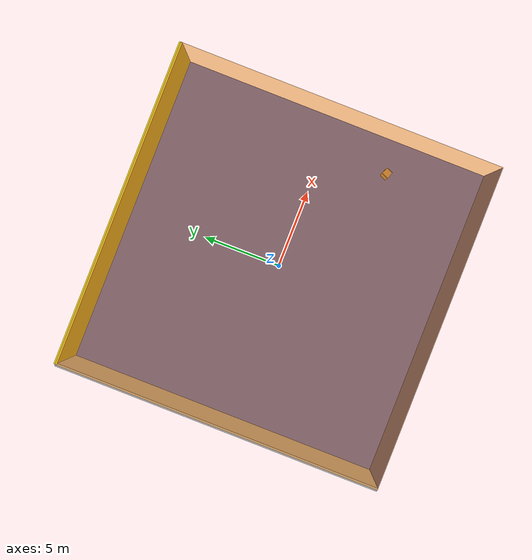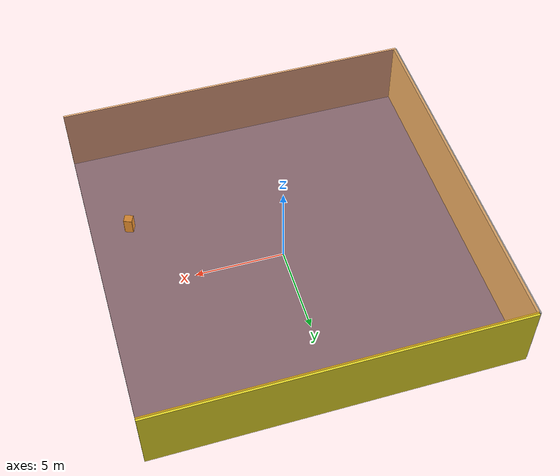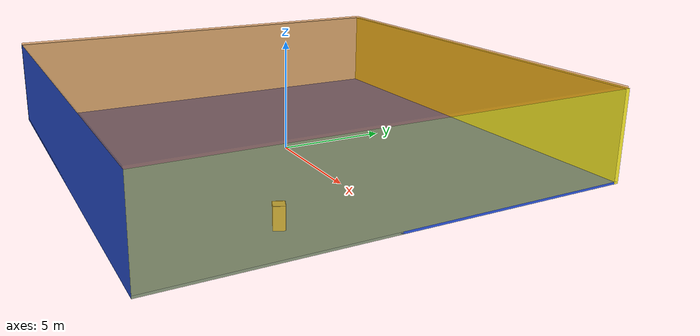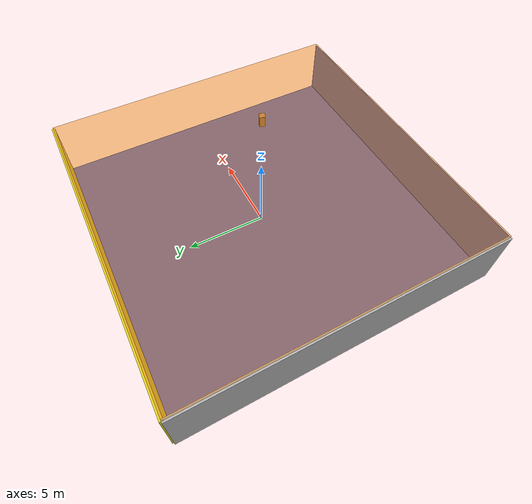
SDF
<sdf version="1.4">
 <world name="default">
  <physics type="ode">
   <max_step_size>0.001</max_step_size>
   <real_time_factor>1</real_time_factor>
   <real_time_update_rate>1000</real_time_update_rate>
   <gravity>0 0 -9.8</gravity>
  </physics>
  <scene><ambient>0.4 0.4 0.4 1</ambient><background>0.7 0.7 0.7 1</background><shadows>1</shadows></scene>
  <model name="Surrounding">
   <static>1</static>
   <link name="Ceiling">
    <collision name="Ceiling_Collision"><geometry><box><size>20 20 0.1</size></box></geometry></collision>
    <visual name="Ceiling_Visual">
     <geometry><box><size>20 20 0.1</size></box></geometry>
     <material>
      <script>
       <uri>file://media/materials/scripts/gazebo.material</uri>
       <name>Gazebo/OrangeTransparent</name>
      </script>
     </material>
    </visual>
    <pose>0 0 4.05 0 0 0</pose>
   </link>
   <link name="Wall_South">
    <collision name="Wall_South_Collision">
     <geometry><box><size>20 0 4</size></box></geometry>
     <pose>0 0 2 0 -0 0</pose>
    </collision>
    <visual name="Wall_South_Visual">
     <pose>0 0 2 0 -0 0</pose>
     <geometry><box><size>20 0 4</size></box></geometry>
     <material>
      <script><uri>file://media/materials/scripts/gazebo.material</uri><name>Gazebo/BlueGlow</name></script>
     </material>
    </visual>
    <velocity_decay><linear>0</linear><angular>0</angular></velocity_decay>
    <pose>0 -10 0 0 -0 0</pose>
   </link>
   <link name="Wall_East">
    <collision name="Wall_21_Collision">
     <geometry><box><size>20 0 4</size></box></geometry>
     <pose>0 0 2 0 -0 0</pose>
    </collision>
    <visual name="Wall_21_Visual">
     <pose>0 0 2 0 -0 0</pose>
     <geometry><box><size>20 0 4</size></box></geometry>
     <material>
      <script>
       <uri>file://media/materials/scripts/gazebo.material</uri>
       <name>Gazebo/YellowTransparent</name>
      </script>
     </material>
    </visual>
    <velocity_decay><linear>0</linear><angular>0</angular></velocity_decay>
    <pose>10 0 0 0 -0 1.5708</pose>
   </link>
   <link name="Wall_North">
    <collision name="Wall_22_Collision">
     <geometry><box><size>20 0.2 4</size></box></geometry>
     <pose>0 0 2 0 -0 0</pose>
    </collision>
    <visual name="Wall_22_Visual">
     <pose>0 0 2 0 -0 0</pose>
     <geometry><box><size>20 0.2 4</size></box></geometry>
     <material>
      <script><uri>file://media/materials/scripts/gazebo.material</uri><name>Gazebo/Yellow</name></script>
     </material>
    </visual>
    <velocity_decay><linear>0</linear><angular>0</angular></velocity_decay>
    <pose>0 10 0 0 -0 0</pose>
   </link>
   <link name="Wall_West">
    <collision name="Wall_23_Collision">
     <geometry><box><size>20 0.2 4</size></box></geometry>
     <pose>0 0 2 0 -0 0</pose>
    </collision>
    <visual name="Wall_23_Visual">
     <pose>0 0 2 0 -0 0</pose>
     <geometry><box><size>20 0.2 4</size></box></geometry>
     <material>
      <script><uri>file://media/materials/scripts/gazebo.material</uri><name>Gazebo/LightOff</name></script>
     </material>
    </visual>
    <velocity_decay><linear>0</linear><angular>0</angular></velocity_decay>
    <pose>-10 0 0 0 0 -1.5708</pose>
   </link>
   <link name="Ground_link">
    <collision name="collision">
     <pose>0 0 .05 0 -0 0</pose>
     <geometry><box><size>20 20 0.1</size></box></geometry>
    </collision>
    <visual name="visual">
     <pose>0 0 .05 0 -0 0</pose>
     <geometry><box><size>20 20 0.1</size></box></geometry>
     <material>
      <script><uri>file://media/materials/scripts/gazebo.material</uri><name>Gazebo/BlueGlow</name></script>
     </material>
    </visual>
   </link>
   <static>1</static>
  </model>
  <spherical_coordinates>
   <surface_model>EARTH_WGS84</surface_model>
   <latitude_deg>0</latitude_deg>
   <longitude_deg>0</longitude_deg>
   <elevation>0</elevation>
   <heading_deg>0</heading_deg>
  </spherical_coordinates>
  <light name="lightball_0" type="diffuse">
   <diffuse>0.8 0.8 0.8 1</diffuse>
   <specular>0.2 0.2 0.2 1</specular>
   <attenuation>
    <range>100</range>
    <constant>0.7</constant>
    <linear>0.01</linear>
    <quadratic>0.001</quadratic>
   </attenuation>
   <direction>-0.5 0.1 -0.9</direction>
   <pose>-9.03877794041 2.15633817191 3.15560771114 0 0 0</pose>
  </light>
  <light name="lightball_1" type="diffuse">
   <diffuse>0.8 0.8 0.8 1</diffuse>
   <specular>0.2 0.2 0.2 1</specular>
   <attenuation>
    <range>100</range>
    <constant>0.7</constant>
    <linear>0.01</linear>
    <quadratic>0.001</quadratic>
   </attenuation>
   <direction>-0.5 0.1 -0.9</direction>
   <pose>3.0296136909 7.08446257426 1.12398493869 0 0 0</pose>
  </light>
  <light name="lightball_2" type="diffuse">
   <diffuse>0.8 0.8 0.8 1</diffuse>
   <specular>0.2 0.2 0.2 1</specular>
   <attenuation>
    <range>100</range>
    <constant>0.7</constant>
    <linear>0.01</linear>
    <quadratic>0.001</quadratic>
   </attenuation>
   <direction>-0.5 0.1 -0.9</direction>
   <pose>-9.07469120796 8.73440017227 3.63661564944 0 0 0</pose>
  </light>
  <light name="lightball_3" type="diffuse">
   <diffuse>0.8 0.8 0.8 1</diffuse>
   <specular>0.2 0.2 0.2 1</specular>
   <attenuation>
    <range>100</range>
    <constant>0.7</constant>
    <linear>0.01</linear>
    <quadratic>0.001</quadratic>
   </attenuation>
   <direction>-0.5 0.1 -0.9</direction>
   <pose>2.59879240844 -6.93326491598 3.74967430962 0 0 0</pose>
  </light>
  <light name="lightball_4" type="diffuse">
   <diffuse>0.8 0.8 0.8 1</diffuse>
   <specular>0.2 0.2 0.2 1</specular>
   <attenuation>
    <range>100</range>
    <constant>0.7</constant>
    <linear>0.01</linear>
    <quadratic>0.001</quadratic>
   </attenuation>
   <direction>-0.5 0.1 -0.9</direction>
   <pose>-0.292900990035 6.26831724834 0.997233294652 0 0 0</pose>
  </light>
  <light name="lightball_5" type="diffuse">
   <diffuse>0.8 0.8 0.8 1</diffuse>
   <specular>0.2 0.2 0.2 1</specular>
   <attenuation>
    <range>100</range>
    <constant>0.7</constant>
    <linear>0.01</linear>
    <quadratic>0.001</quadratic>
   </attenuation>
   <direction>-0.5 0.1 -0.9</direction>
   <pose>-9.44272290366 -2.25874843827 0.825043515279 0 0 0</pose>
  </light>
  <light name="lightball_6" type="diffuse">
   <diffuse>0.8 0.8 0.8 1</diffuse>
   <specular>0.2 0.2 0.2 1</specular>
   <attenuation>
    <range>100</range>
    <constant>0.7</constant>
    <linear>0.01</linear>
    <quadratic>0.001</quadratic>
   </attenuation>
   <direction>-0.5 0.1 -0.9</direction>
   <pose>-8.5941989576 6.80517806967 0.853679035964 0 0 0</pose>
  </light>
  <light name="lightball_7" type="diffuse">
   <diffuse>0.8 0.8 0.8 1</diffuse>
   <specular>0.2 0.2 0.2 1</specular>
   <attenuation>
    <range>100</range>
    <constant>0.7</constant>
    <linear>0.01</linear>
    <quadratic>0.001</quadratic>
   </attenuation>
   <direction>-0.5 0.1 -0.9</direction>
   <pose>-5.21727715769 -9.66714780297 2.21859351184 0 0 0</pose>
  </light>
  <light name="lightball_8" type="diffuse">
   <diffuse>0.8 0.8 0.8 1</diffuse>
   <specular>0.2 0.2 0.2 1</specular>
   <attenuation>
    <range>100</range>
    <constant>0.7</constant>
    <linear>0.01</linear>
    <quadratic>0.001</quadratic>
   </attenuation>
   <direction>-0.5 0.1 -0.9</direction>
   <pose>0.664665402076 -4.29140542931 0.791580233124 0 0 0</pose>
  </light>
  <include><uri>model://cabinet</uri><pose>7.80245943016 -4.16912784887 0 0 0 1.18272673492</pose></include>
 </world>
</sdf>

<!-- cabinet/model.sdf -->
<sdf version="1.5">
  <model name="cabinet">
    <static>true</static>
    <link name="cabinet_bottom_plate">
      <inertial>
        <pose>0 0 -1 0 0 0</pose>
        <inertia>
          <ixx>2.050000</ixx>
          <ixy>0</ixy>
          <ixz>0</ixz>
          <iyy>2.050000</iyy>
          <iyz>0</iyz>
          <izz>2.050000</izz>
        </inertia>
        <mass>25.000000</mass>
      </inertial>
      <collision name="cabinet_bottom_plate_geom">
        <pose>0 0 0.010000 0 0 0</pose>
        <geometry>
          <box>
            <size>0.450000 0.450000 0.020000</size>
          </box>
        </geometry>
      </collision>
      <visual name="cabinet_bottom_plate_geom_visual">
        <pose>0 0 0.010000 0 0 0</pose>
        <geometry>
          <box>
            <size>0.450000 0.450000 0.020000</size>
          </box>
        </geometry>
        <material>
          <script>
            <uri>model://media/materials/scripts/gazebo.material</uri>
            <name>Gazebo/Wood</name>
          </script>
        </material>
      </visual>
      <collision name="cabinet_bottom_plate_geom_cabinet_back_plate">
        <pose>0.235000 0 0.510000 0 0 0</pose>
        <geometry>
          <box>
            <size>0.020000 0.450000 1.020000</size>
          </box>
        </geometry>
      </collision>
      <visual name="cabinet_bottom_plate_geom_cabinet_back_plate_visual">
        <pose>0.235000 0 0.510000 0 0 0</pose>
        <geometry>
          <box>
            <size>0.020000 0.450000 1.020000</size>
          </box>
        </geometry>
        <material>
          <script>
            <uri>model://media/materials/scripts/gazebo.material</uri>
            <name>Gazebo/Wood</name>
          </script>
        </material>
      </visual>
      <collision name="cabinet_bottom_plate_geom_cabinet_left_plate">
        <pose>0 0.235000 0.510000 0 0 0</pose>
        <geometry>
          <box>
            <size>0.450000 0.020000 1.020000</size>
          </box>
        </geometry>
      </collision>
      <visual name="cabinet_bottom_plate_geom_cabinet_left_plate_visual">
        <pose>0 0.235000 0.510000 0 0 0</pose>
        <geometry>
          <box>
            <size>0.450000 0.020000 1.020000</size>
          </box>
        </geometry>
        <material>
          <script>
            <uri>model://media/materials/scripts/gazebo.material</uri>
            <name>Gazebo/Wood</name>
          </script>
        </material>
      </visual>
      <collision name="cabinet_bottom_plate_geom_cabinet_middle_plate">
        <pose>0 0 0.510000 0 0 0</pose>
        <geometry>
          <box>
            <size>0.450000 0.450000 0.020000</size>
          </box>
        </geometry>
      </collision>
      <visual name="cabinet_bottom_plate_geom_cabinet_middle_plate_visual">
        <pose>0 0 0.510000 0 0 0</pose>
        <geometry>
          <box>
            <size>0.450000 0.450000 0.020000</size>
          </box>
        </geometry>
        <material>
          <script>
            <uri>model://media/materials/scripts/gazebo.material</uri>
            <name>Gazebo/Wood</name>
          </script>
        </material>
      </visual>
      <collision name="cabinet_bottom_plate_geom_cabinet_right_plate">
        <pose>0 -0.235000 0.510000 0 0 0</pose>
        <geometry>
          <box>
            <size>0.450000 0.020000 1.020000</size>
          </box>
        </geometry>
      </collision>
      <visual name="cabinet_bottom_plate_geom_cabinet_right_plate_visual">
        <pose>0 -0.235000 0.510000 0 0 0</pose>
        <geometry>
          <box>
            <size>0.450000 0.020000 1.020000</size>
          </box>
        </geometry>
        <material>
          <script>
            <uri>model://media/materials/scripts/gazebo.material</uri>
            <name>Gazebo/Wood</name>
          </script>
        </material>
      </visual>
      <collision name="cabinet_bottom_plate_geom_cabinet_top_plate">
        <pose>0 0 1.010000 0 0 0</pose>
        <geometry>
          <box>
            <size>0.450000 0.450000 0.020000</size>
          </box>
        </geometry>
      </collision>
      <visual name="cabinet_bottom_plate_geom_cabinet_top_plate_visual">
        <pose>0 0 1.010000 0 0 0</pose>
        <geometry>
          <box>
            <size>0.450000 0.450000 0.020000</size>
          </box>
        </geometry>
        <material>
          <script>
            <uri>model://media/materials/scripts/gazebo.material</uri>
            <name>Gazebo/Wood</name>
          </script>
        </material>
      </visual>
    </link>
  </model>
</sdf>
